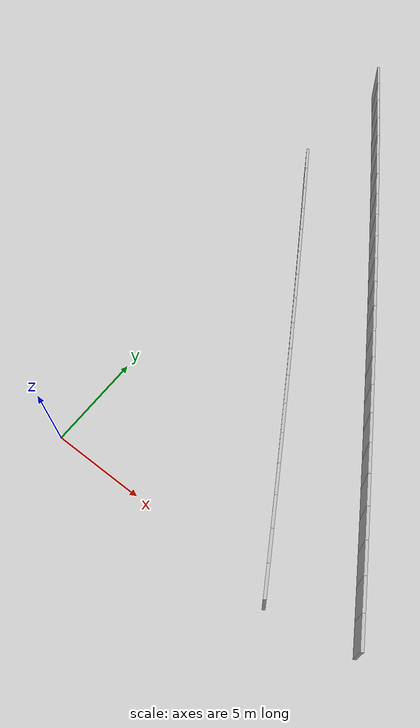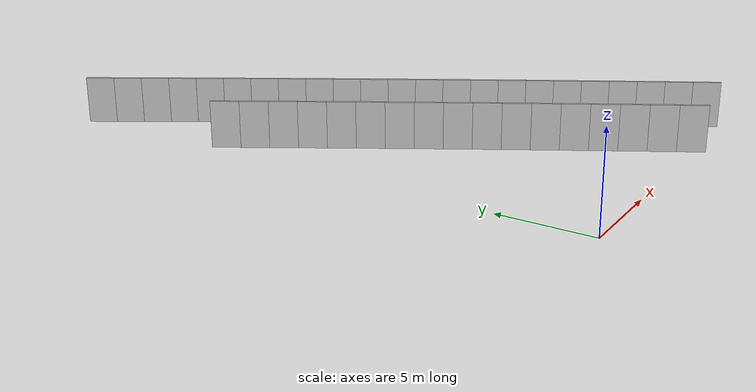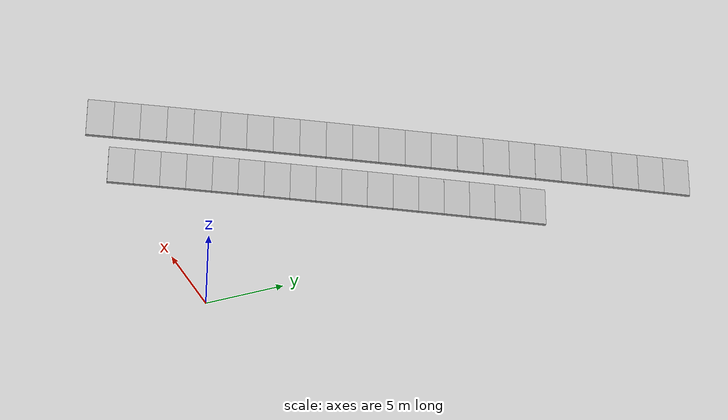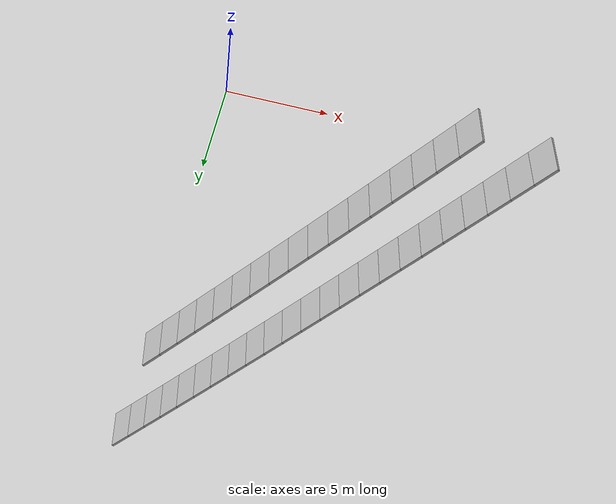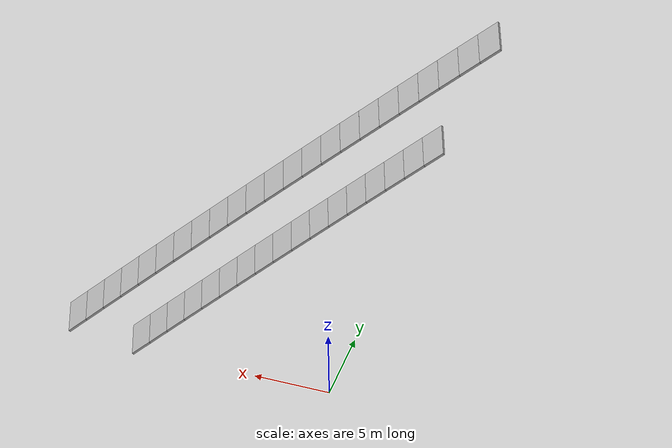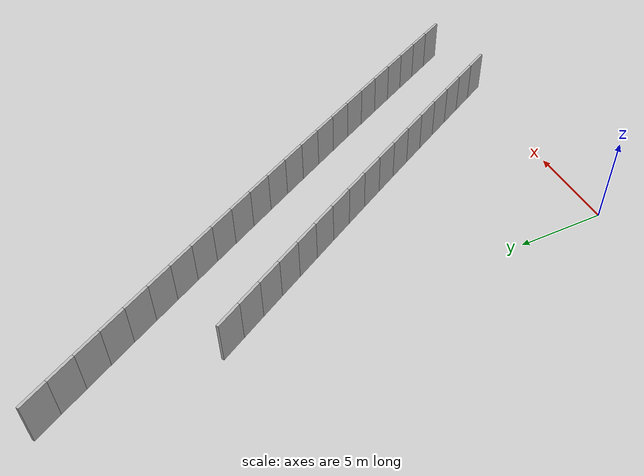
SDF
<?xml version="1.0" ?>
<sdf version="1.6">
  <model name="sps_4337">
    <pose frame="">0 0 0 0 -0 0</pose>
    <static>1</static>
    <self_collide>0</self_collide>
    <allow_auto_disable>0</allow_auto_disable>
    <link name="Wall10246">
      <kinematic>0</kinematic>
      <gravity>1</gravity>
      <self_collide>0</self_collide>
      <collision name="collision">
        <geometry>
          <box>
            <size>1.49635 0.15 2.5</size>
          </box>
        </geometry>
        <pose frame="">0 0 0 0 -0 0</pose>
      </collision>
      <visual name="visual">
        <geometry>
          <box>
            <size>1.49635 0.15 2.5</size>
          </box>
        </geometry>
        <pose frame="">0 0 0 0 -0 0</pose>
        <cast_shadows>1</cast_shadows>
        <transparency>0.0</transparency>
      </visual>
      <pose frame="">12.5391 0.148971 1.25 0 -0 2.08425</pose>
    </link>
    <link name="Wall10247">
      <kinematic>0</kinematic>
      <gravity>1</gravity>
      <self_collide>0</self_collide>
      <collision name="collision">
        <geometry>
          <box>
            <size>1.49658 0.15 2.5</size>
          </box>
        </geometry>
        <pose frame="">0 0 0 0 -0 0</pose>
      </collision>
      <visual name="visual">
        <geometry>
          <box>
            <size>1.49658 0.15 2.5</size>
          </box>
        </geometry>
        <pose frame="">0 0 0 0 -0 0</pose>
        <cast_shadows>1</cast_shadows>
        <transparency>0.0</transparency>
      </visual>
      <pose frame="">11.8031 1.45189 1.25 0 -0 2.08585</pose>
    </link>
    <link name="Wall10248">
      <kinematic>0</kinematic>
      <gravity>1</gravity>
      <self_collide>0</self_collide>
      <collision name="collision">
        <geometry>
          <box>
            <size>1.49642 0.15 2.5</size>
          </box>
        </geometry>
        <pose frame="">0 0 0 0 -0 0</pose>
      </collision>
      <visual name="visual">
        <geometry>
          <box>
            <size>1.49642 0.15 2.5</size>
          </box>
        </geometry>
        <pose frame="">0 0 0 0 -0 0</pose>
        <cast_shadows>1</cast_shadows>
        <transparency>0.0</transparency>
      </visual>
      <pose frame="">11.065 2.75371 1.25 0 -0 2.08731</pose>
    </link>
    <link name="Wall10249">
      <kinematic>0</kinematic>
      <gravity>1</gravity>
      <self_collide>0</self_collide>
      <collision name="collision">
        <geometry>
          <box>
            <size>1.49661 0.15 2.5</size>
          </box>
        </geometry>
        <pose frame="">0 0 0 0 -0 0</pose>
      </collision>
      <visual name="visual">
        <geometry>
          <box>
            <size>1.49661 0.15 2.5</size>
          </box>
        </geometry>
        <pose frame="">0 0 0 0 -0 0</pose>
        <cast_shadows>1</cast_shadows>
        <transparency>0.0</transparency>
      </visual>
      <pose frame="">10.3249 4.0544 1.25 0 -0 2.08893</pose>
    </link>
    <link name="Wall10250">
      <kinematic>0</kinematic>
      <gravity>1</gravity>
      <self_collide>0</self_collide>
      <collision name="collision">
        <geometry>
          <box>
            <size>1.49653 0.15 2.5</size>
          </box>
        </geometry>
        <pose frame="">0 0 0 0 -0 0</pose>
      </collision>
      <visual name="visual">
        <geometry>
          <box>
            <size>1.49653 0.15 2.5</size>
          </box>
        </geometry>
        <pose frame="">0 0 0 0 -0 0</pose>
        <cast_shadows>1</cast_shadows>
        <transparency>0.0</transparency>
      </visual>
      <pose frame="">9.58254 5.3539 1.25 0 -0 2.09065</pose>
    </link>
    <link name="Wall10251">
      <kinematic>0</kinematic>
      <gravity>1</gravity>
      <self_collide>0</self_collide>
      <collision name="collision">
        <geometry>
          <box>
            <size>1.49635 0.15 2.5</size>
          </box>
        </geometry>
        <pose frame="">0 0 0 0 -0 0</pose>
      </collision>
      <visual name="visual">
        <geometry>
          <box>
            <size>1.49635 0.15 2.5</size>
          </box>
        </geometry>
        <pose frame="">0 0 0 0 -0 0</pose>
        <cast_shadows>1</cast_shadows>
        <transparency>0.0</transparency>
      </visual>
      <pose frame="">8.83825 6.65211 1.25 0 -0 2.09208</pose>
    </link>
    <link name="Wall10252">
      <kinematic>0</kinematic>
      <gravity>1</gravity>
      <self_collide>0</self_collide>
      <collision name="collision">
        <geometry>
          <box>
            <size>1.49667 0.15 2.5</size>
          </box>
        </geometry>
        <pose frame="">0 0 0 0 -0 0</pose>
      </collision>
      <visual name="visual">
        <geometry>
          <box>
            <size>1.49667 0.15 2.5</size>
          </box>
        </geometry>
        <pose frame="">0 0 0 0 -0 0</pose>
        <cast_shadows>1</cast_shadows>
        <transparency>0.0</transparency>
      </visual>
      <pose frame="">8.09185 7.9492 1.25 0 -0 2.09384</pose>
    </link>
    <link name="Wall10253">
      <kinematic>0</kinematic>
      <gravity>1</gravity>
      <self_collide>0</self_collide>
      <collision name="collision">
        <geometry>
          <box>
            <size>1.49639 0.15 2.5</size>
          </box>
        </geometry>
        <pose frame="">0 0 0 0 -0 0</pose>
      </collision>
      <visual name="visual">
        <geometry>
          <box>
            <size>1.49639 0.15 2.5</size>
          </box>
        </geometry>
        <pose frame="">0 0 0 0 -0 0</pose>
        <cast_shadows>1</cast_shadows>
        <transparency>0.0</transparency>
      </visual>
      <pose frame="">7.34334 9.2451 1.25 0 -0 2.09532</pose>
    </link>
    <link name="Wall10254">
      <kinematic>0</kinematic>
      <gravity>1</gravity>
      <self_collide>0</self_collide>
      <collision name="collision">
        <geometry>
          <box>
            <size>1.49651 0.15 2.5</size>
          </box>
        </geometry>
        <pose frame="">0 0 0 0 -0 0</pose>
      </collision>
      <visual name="visual">
        <geometry>
          <box>
            <size>1.49651 0.15 2.5</size>
          </box>
        </geometry>
        <pose frame="">0 0 0 0 -0 0</pose>
        <cast_shadows>1</cast_shadows>
        <transparency>0.0</transparency>
      </visual>
      <pose frame="">6.59295 10.5398 1.25 0 -0 2.09683</pose>
    </link>
    <link name="Wall10255">
      <kinematic>0</kinematic>
      <gravity>1</gravity>
      <self_collide>0</self_collide>
      <collision name="collision">
        <geometry>
          <box>
            <size>1.49656 0.15 2.5</size>
          </box>
        </geometry>
        <pose frame="">0 0 0 0 -0 0</pose>
      </collision>
      <visual name="visual">
        <geometry>
          <box>
            <size>1.49656 0.15 2.5</size>
          </box>
        </geometry>
        <pose frame="">0 0 0 0 -0 0</pose>
        <cast_shadows>1</cast_shadows>
        <transparency>0.0</transparency>
      </visual>
      <pose frame="">5.84045 11.8334 1.25 0 -0 2.09851</pose>
    </link>
    <link name="Wall10256">
      <kinematic>0</kinematic>
      <gravity>1</gravity>
      <self_collide>0</self_collide>
      <collision name="collision">
        <geometry>
          <box>
            <size>1.49657 0.15 2.5</size>
          </box>
        </geometry>
        <pose frame="">0 0 0 0 -0 0</pose>
      </collision>
      <visual name="visual">
        <geometry>
          <box>
            <size>1.49657 0.15 2.5</size>
          </box>
        </geometry>
        <pose frame="">0 0 0 0 -0 0</pose>
        <cast_shadows>1</cast_shadows>
        <transparency>0.0</transparency>
      </visual>
      <pose frame="">5.08584 13.1258 1.25 0 -0 2.10006</pose>
    </link>
    <link name="Wall10257">
      <kinematic>0</kinematic>
      <gravity>1</gravity>
      <self_collide>0</self_collide>
      <collision name="collision">
        <geometry>
          <box>
            <size>1.49651 0.15 2.5</size>
          </box>
        </geometry>
        <pose frame="">0 0 0 0 -0 0</pose>
      </collision>
      <visual name="visual">
        <geometry>
          <box>
            <size>1.49651 0.15 2.5</size>
          </box>
        </geometry>
        <pose frame="">0 0 0 0 -0 0</pose>
        <cast_shadows>1</cast_shadows>
        <transparency>0.0</transparency>
      </visual>
      <pose frame="">4.32925 14.417 1.25 0 -0 2.1016</pose>
    </link>
    <link name="Wall10258">
      <kinematic>0</kinematic>
      <gravity>1</gravity>
      <self_collide>0</self_collide>
      <collision name="collision">
        <geometry>
          <box>
            <size>1.49649 0.15 2.5</size>
          </box>
        </geometry>
        <pose frame="">0 0 0 0 -0 0</pose>
      </collision>
      <visual name="visual">
        <geometry>
          <box>
            <size>1.49649 0.15 2.5</size>
          </box>
        </geometry>
        <pose frame="">0 0 0 0 -0 0</pose>
        <cast_shadows>1</cast_shadows>
        <transparency>0.0</transparency>
      </visual>
      <pose frame="">3.57055 15.7069 1.25 0 -0 2.10335</pose>
    </link>
    <link name="Wall10259">
      <kinematic>0</kinematic>
      <gravity>1</gravity>
      <self_collide>0</self_collide>
      <collision name="collision">
        <geometry>
          <box>
            <size>1.49629 0.15 2.5</size>
          </box>
        </geometry>
        <pose frame="">0 0 0 0 -0 0</pose>
      </collision>
      <visual name="visual">
        <geometry>
          <box>
            <size>1.49629 0.15 2.5</size>
          </box>
        </geometry>
        <pose frame="">0 0 0 0 -0 0</pose>
        <cast_shadows>1</cast_shadows>
        <transparency>0.0</transparency>
      </visual>
      <pose frame="">2.80984 16.9955 1.25 0 -0 2.10481</pose>
    </link>
    <link name="Wall10260">
      <kinematic>0</kinematic>
      <gravity>1</gravity>
      <self_collide>0</self_collide>
      <collision name="collision">
        <geometry>
          <box>
            <size>1.49657 0.15 2.5</size>
          </box>
        </geometry>
        <pose frame="">0 0 0 0 -0 0</pose>
      </collision>
      <visual name="visual">
        <geometry>
          <box>
            <size>1.49657 0.15 2.5</size>
          </box>
        </geometry>
        <pose frame="">0 0 0 0 -0 0</pose>
        <cast_shadows>1</cast_shadows>
        <transparency>0.0</transparency>
      </visual>
      <pose frame="">2.04714 18.283 1.25 0 -0 2.1064</pose>
    </link>
    <link name="Wall10261">
      <kinematic>0</kinematic>
      <gravity>1</gravity>
      <self_collide>0</self_collide>
      <collision name="collision">
        <geometry>
          <box>
            <size>1.49669 0.15 2.5</size>
          </box>
        </geometry>
        <pose frame="">0 0 0 0 -0 0</pose>
      </collision>
      <visual name="visual">
        <geometry>
          <box>
            <size>1.49669 0.15 2.5</size>
          </box>
        </geometry>
        <pose frame="">0 0 0 0 -0 0</pose>
        <cast_shadows>1</cast_shadows>
        <transparency>0.0</transparency>
      </visual>
      <pose frame="">1.28225 19.5694 1.25 0 -0 2.10806</pose>
    </link>
    <link name="Wall10262">
      <kinematic>0</kinematic>
      <gravity>1</gravity>
      <self_collide>0</self_collide>
      <collision name="collision">
        <geometry>
          <box>
            <size>1.49643 0.15 2.5</size>
          </box>
        </geometry>
        <pose frame="">0 0 0 0 -0 0</pose>
      </collision>
      <visual name="visual">
        <geometry>
          <box>
            <size>1.49643 0.15 2.5</size>
          </box>
        </geometry>
        <pose frame="">0 0 0 0 -0 0</pose>
        <cast_shadows>1</cast_shadows>
        <transparency>0.0</transparency>
      </visual>
      <pose frame="">0.515342 20.8545 1.25 0 -0 2.10959</pose>
    </link>
    <link name="Wall10842">
      <kinematic>0</kinematic>
      <gravity>1</gravity>
      <self_collide>0</self_collide>
      <collision name="collision">
        <geometry>
          <box>
            <size>1.50323 0.15 2.5</size>
          </box>
        </geometry>
        <pose frame="">0 0 0 0 -0 0</pose>
      </collision>
      <visual name="visual">
        <geometry>
          <box>
            <size>1.50323 0.15 2.5</size>
          </box>
        </geometry>
        <pose frame="">0 0 0 0 -0 0</pose>
        <cast_shadows>1</cast_shadows>
        <transparency>0.0</transparency>
      </visual>
      <pose frame="">16.8825 0.87297 1.25 0 -0 2.0826</pose>
    </link>
    <link name="Wall10843">
      <kinematic>0</kinematic>
      <gravity>1</gravity>
      <self_collide>0</self_collide>
      <collision name="collision">
        <geometry>
          <box>
            <size>1.50296 0.15 2.5</size>
          </box>
        </geometry>
        <pose frame="">0 0 0 0 -0 0</pose>
      </collision>
      <visual name="visual">
        <geometry>
          <box>
            <size>1.50296 0.15 2.5</size>
          </box>
        </geometry>
        <pose frame="">0 0 0 0 -0 0</pose>
        <cast_shadows>1</cast_shadows>
        <transparency>0.0</transparency>
      </visual>
      <pose frame="">16.1453 2.18288 1.25 0 -0 2.08419</pose>
    </link>
    <link name="Wall10844">
      <kinematic>0</kinematic>
      <gravity>1</gravity>
      <self_collide>0</self_collide>
      <collision name="collision">
        <geometry>
          <box>
            <size>1.50297 0.15 2.5</size>
          </box>
        </geometry>
        <pose frame="">0 0 0 0 -0 0</pose>
      </collision>
      <visual name="visual">
        <geometry>
          <box>
            <size>1.50297 0.15 2.5</size>
          </box>
        </geometry>
        <pose frame="">0 0 0 0 -0 0</pose>
        <cast_shadows>1</cast_shadows>
        <transparency>0.0</transparency>
      </visual>
      <pose frame="">15.4062 3.4915 1.25 0 -0 2.08577</pose>
    </link>
    <link name="Wall10845">
      <kinematic>0</kinematic>
      <gravity>1</gravity>
      <self_collide>0</self_collide>
      <collision name="collision">
        <geometry>
          <box>
            <size>1.50316 0.15 2.5</size>
          </box>
        </geometry>
        <pose frame="">0 0 0 0 -0 0</pose>
      </collision>
      <visual name="visual">
        <geometry>
          <box>
            <size>1.50316 0.15 2.5</size>
          </box>
        </geometry>
        <pose frame="">0 0 0 0 -0 0</pose>
        <cast_shadows>1</cast_shadows>
        <transparency>0.0</transparency>
      </visual>
      <pose frame="">14.6648 4.79899 1.25 0 -0 2.08747</pose>
    </link>
    <link name="Wall10846">
      <kinematic>0</kinematic>
      <gravity>1</gravity>
      <self_collide>0</self_collide>
      <collision name="collision">
        <geometry>
          <box>
            <size>1.50314 0.15 2.5</size>
          </box>
        </geometry>
        <pose frame="">0 0 0 0 -0 0</pose>
      </collision>
      <visual name="visual">
        <geometry>
          <box>
            <size>1.50314 0.15 2.5</size>
          </box>
        </geometry>
        <pose frame="">0 0 0 0 -0 0</pose>
        <cast_shadows>1</cast_shadows>
        <transparency>0.0</transparency>
      </visual>
      <pose frame="">13.9213 6.10539 1.25 0 -0 2.08893</pose>
    </link>
    <link name="Wall10847">
      <kinematic>0</kinematic>
      <gravity>1</gravity>
      <self_collide>0</self_collide>
      <collision name="collision">
        <geometry>
          <box>
            <size>1.50309 0.15 2.5</size>
          </box>
        </geometry>
        <pose frame="">0 0 0 0 -0 0</pose>
      </collision>
      <visual name="visual">
        <geometry>
          <box>
            <size>1.50309 0.15 2.5</size>
          </box>
        </geometry>
        <pose frame="">0 0 0 0 -0 0</pose>
        <cast_shadows>1</cast_shadows>
        <transparency>0.0</transparency>
      </visual>
      <pose frame="">13.1757 7.4106 1.25 0 -0 2.09059</pose>
    </link>
    <link name="Wall10848">
      <kinematic>0</kinematic>
      <gravity>1</gravity>
      <self_collide>0</self_collide>
      <collision name="collision">
        <geometry>
          <box>
            <size>1.50308 0.15 2.5</size>
          </box>
        </geometry>
        <pose frame="">0 0 0 0 -0 0</pose>
      </collision>
      <visual name="visual">
        <geometry>
          <box>
            <size>1.50308 0.15 2.5</size>
          </box>
        </geometry>
        <pose frame="">0 0 0 0 -0 0</pose>
        <cast_shadows>1</cast_shadows>
        <transparency>0.0</transparency>
      </visual>
      <pose frame="">12.4282 8.71458 1.25 0 -0 2.09213</pose>
    </link>
    <link name="Wall10849">
      <kinematic>0</kinematic>
      <gravity>1</gravity>
      <self_collide>0</self_collide>
      <collision name="collision">
        <geometry>
          <box>
            <size>1.50303 0.15 2.5</size>
          </box>
        </geometry>
        <pose frame="">0 0 0 0 -0 0</pose>
      </collision>
      <visual name="visual">
        <geometry>
          <box>
            <size>1.50303 0.15 2.5</size>
          </box>
        </geometry>
        <pose frame="">0 0 0 0 -0 0</pose>
        <cast_shadows>1</cast_shadows>
        <transparency>0.0</transparency>
      </visual>
      <pose frame="">11.6786 10.0174 1.25 0 -0 2.0937</pose>
    </link>
    <link name="Wall10850">
      <kinematic>0</kinematic>
      <gravity>1</gravity>
      <self_collide>0</self_collide>
      <collision name="collision">
        <geometry>
          <box>
            <size>1.50297 0.15 2.5</size>
          </box>
        </geometry>
        <pose frame="">0 0 0 0 -0 0</pose>
      </collision>
      <visual name="visual">
        <geometry>
          <box>
            <size>1.50297 0.15 2.5</size>
          </box>
        </geometry>
        <pose frame="">0 0 0 0 -0 0</pose>
        <cast_shadows>1</cast_shadows>
        <transparency>0.0</transparency>
      </visual>
      <pose frame="">10.9268 11.3189 1.25 0 -0 2.09541</pose>
    </link>
    <link name="Wall10851">
      <kinematic>0</kinematic>
      <gravity>1</gravity>
      <self_collide>0</self_collide>
      <collision name="collision">
        <geometry>
          <box>
            <size>1.50305 0.15 2.5</size>
          </box>
        </geometry>
        <pose frame="">0 0 0 0 -0 0</pose>
      </collision>
      <visual name="visual">
        <geometry>
          <box>
            <size>1.50305 0.15 2.5</size>
          </box>
        </geometry>
        <pose frame="">0 0 0 0 -0 0</pose>
        <cast_shadows>1</cast_shadows>
        <transparency>0.0</transparency>
      </visual>
      <pose frame="">10.1731 12.6192 1.25 0 -0 2.09688</pose>
    </link>
    <link name="Wall10852">
      <kinematic>0</kinematic>
      <gravity>1</gravity>
      <self_collide>0</self_collide>
      <collision name="collision">
        <geometry>
          <box>
            <size>1.50304 0.15 2.5</size>
          </box>
        </geometry>
        <pose frame="">0 0 0 0 -0 0</pose>
      </collision>
      <visual name="visual">
        <geometry>
          <box>
            <size>1.50304 0.15 2.5</size>
          </box>
        </geometry>
        <pose frame="">0 0 0 0 -0 0</pose>
        <cast_shadows>1</cast_shadows>
        <transparency>0.0</transparency>
      </visual>
      <pose frame="">9.41726 13.9184 1.25 0 -0 2.09848</pose>
    </link>
    <link name="Wall10853">
      <kinematic>0</kinematic>
      <gravity>1</gravity>
      <self_collide>0</self_collide>
      <collision name="collision">
        <geometry>
          <box>
            <size>1.50306 0.15 2.5</size>
          </box>
        </geometry>
        <pose frame="">0 0 0 0 -0 0</pose>
      </collision>
      <visual name="visual">
        <geometry>
          <box>
            <size>1.50306 0.15 2.5</size>
          </box>
        </geometry>
        <pose frame="">0 0 0 0 -0 0</pose>
        <cast_shadows>1</cast_shadows>
        <transparency>0.0</transparency>
      </visual>
      <pose frame="">8.65935 15.2164 1.25 0 -0 2.10012</pose>
    </link>
    <link name="Wall10854">
      <kinematic>0</kinematic>
      <gravity>1</gravity>
      <self_collide>0</self_collide>
      <collision name="collision">
        <geometry>
          <box>
            <size>1.50308 0.15 2.5</size>
          </box>
        </geometry>
        <pose frame="">0 0 0 0 -0 0</pose>
      </collision>
      <visual name="visual">
        <geometry>
          <box>
            <size>1.50308 0.15 2.5</size>
          </box>
        </geometry>
        <pose frame="">0 0 0 0 -0 0</pose>
        <cast_shadows>1</cast_shadows>
        <transparency>0.0</transparency>
      </visual>
      <pose frame="">7.89938 16.5132 1.25 0 -0 2.10167</pose>
    </link>
    <link name="Wall10855">
      <kinematic>0</kinematic>
      <gravity>1</gravity>
      <self_collide>0</self_collide>
      <collision name="collision">
        <geometry>
          <box>
            <size>1.5031 0.15 2.5</size>
          </box>
        </geometry>
        <pose frame="">0 0 0 0 -0 0</pose>
      </collision>
      <visual name="visual">
        <geometry>
          <box>
            <size>1.5031 0.15 2.5</size>
          </box>
        </geometry>
        <pose frame="">0 0 0 0 -0 0</pose>
        <cast_shadows>1</cast_shadows>
        <transparency>0.0</transparency>
      </visual>
      <pose frame="">7.13738 17.8088 1.25 0 -0 2.10321</pose>
    </link>
    <link name="Wall10856">
      <kinematic>0</kinematic>
      <gravity>1</gravity>
      <self_collide>0</self_collide>
      <collision name="collision">
        <geometry>
          <box>
            <size>1.50311 0.15 2.5</size>
          </box>
        </geometry>
        <pose frame="">0 0 0 0 -0 0</pose>
      </collision>
      <visual name="visual">
        <geometry>
          <box>
            <size>1.50311 0.15 2.5</size>
          </box>
        </geometry>
        <pose frame="">0 0 0 0 -0 0</pose>
        <cast_shadows>1</cast_shadows>
        <transparency>0.0</transparency>
      </visual>
      <pose frame="">6.37328 19.1032 1.25 0 -0 2.10491</pose>
    </link>
    <link name="Wall10857">
      <kinematic>0</kinematic>
      <gravity>1</gravity>
      <self_collide>0</self_collide>
      <collision name="collision">
        <geometry>
          <box>
            <size>1.50305 0.15 2.5</size>
          </box>
        </geometry>
        <pose frame="">0 0 0 0 -0 0</pose>
      </collision>
      <visual name="visual">
        <geometry>
          <box>
            <size>1.50305 0.15 2.5</size>
          </box>
        </geometry>
        <pose frame="">0 0 0 0 -0 0</pose>
        <cast_shadows>1</cast_shadows>
        <transparency>0.0</transparency>
      </visual>
      <pose frame="">5.60717 20.3964 1.25 0 -0 2.10635</pose>
    </link>
    <link name="Wall10858">
      <kinematic>0</kinematic>
      <gravity>1</gravity>
      <self_collide>0</self_collide>
      <collision name="collision">
        <geometry>
          <box>
            <size>1.50296 0.15 2.5</size>
          </box>
        </geometry>
        <pose frame="">0 0 0 0 -0 0</pose>
      </collision>
      <visual name="visual">
        <geometry>
          <box>
            <size>1.50296 0.15 2.5</size>
          </box>
        </geometry>
        <pose frame="">0 0 0 0 -0 0</pose>
        <cast_shadows>1</cast_shadows>
        <transparency>0.0</transparency>
      </visual>
      <pose frame="">4.83904 21.6883 1.25 0 -0 2.10808</pose>
    </link>
    <link name="Wall10859">
      <kinematic>0</kinematic>
      <gravity>1</gravity>
      <self_collide>0</self_collide>
      <collision name="collision">
        <geometry>
          <box>
            <size>1.50313 0.15 2.5</size>
          </box>
        </geometry>
        <pose frame="">0 0 0 0 -0 0</pose>
      </collision>
      <visual name="visual">
        <geometry>
          <box>
            <size>1.50313 0.15 2.5</size>
          </box>
        </geometry>
        <pose frame="">0 0 0 0 -0 0</pose>
        <cast_shadows>1</cast_shadows>
        <transparency>0.0</transparency>
      </visual>
      <pose frame="">4.06884 22.979 1.25 0 -0 2.10953</pose>
    </link>
    <link name="Wall10860">
      <kinematic>0</kinematic>
      <gravity>1</gravity>
      <self_collide>0</self_collide>
      <collision name="collision">
        <geometry>
          <box>
            <size>1.50321 0.15 2.5</size>
          </box>
        </geometry>
        <pose frame="">0 0 0 0 -0 0</pose>
      </collision>
      <visual name="visual">
        <geometry>
          <box>
            <size>1.50321 0.15 2.5</size>
          </box>
        </geometry>
        <pose frame="">0 0 0 0 -0 0</pose>
        <cast_shadows>1</cast_shadows>
        <transparency>0.0</transparency>
      </visual>
      <pose frame="">3.29656 24.2686 1.25 0 -0 2.1112</pose>
    </link>
    <link name="Wall10861">
      <kinematic>0</kinematic>
      <gravity>1</gravity>
      <self_collide>0</self_collide>
      <collision name="collision">
        <geometry>
          <box>
            <size>1.50311 0.15 2.5</size>
          </box>
        </geometry>
        <pose frame="">0 0 0 0 -0 0</pose>
      </collision>
      <visual name="visual">
        <geometry>
          <box>
            <size>1.50311 0.15 2.5</size>
          </box>
        </geometry>
        <pose frame="">0 0 0 0 -0 0</pose>
        <cast_shadows>1</cast_shadows>
        <transparency>0.0</transparency>
      </visual>
      <pose frame="">2.52227 25.557 1.25 0 -0 2.11266</pose>
    </link>
    <link name="Wall10862">
      <kinematic>0</kinematic>
      <gravity>1</gravity>
      <self_collide>0</self_collide>
      <collision name="collision">
        <geometry>
          <box>
            <size>1.50309 0.15 2.5</size>
          </box>
        </geometry>
        <pose frame="">0 0 0 0 -0 0</pose>
      </collision>
      <visual name="visual">
        <geometry>
          <box>
            <size>1.50309 0.15 2.5</size>
          </box>
        </geometry>
        <pose frame="">0 0 0 0 -0 0</pose>
        <cast_shadows>1</cast_shadows>
        <transparency>0.0</transparency>
      </visual>
      <pose frame="">1.74596 26.8441 1.25 0 -0 2.11438</pose>
    </link>
    <link name="Wall10863">
      <kinematic>0</kinematic>
      <gravity>1</gravity>
      <self_collide>0</self_collide>
      <collision name="collision">
        <geometry>
          <box>
            <size>1.50304 0.15 2.5</size>
          </box>
        </geometry>
        <pose frame="">0 0 0 0 -0 0</pose>
      </collision>
      <visual name="visual">
        <geometry>
          <box>
            <size>1.50304 0.15 2.5</size>
          </box>
        </geometry>
        <pose frame="">0 0 0 0 -0 0</pose>
        <cast_shadows>1</cast_shadows>
        <transparency>0.0</transparency>
      </visual>
      <pose frame="">0.967552 28.1299 1.25 0 -0 2.11597</pose>
    </link>
    <link name="Wall10864">
      <kinematic>0</kinematic>
      <gravity>1</gravity>
      <self_collide>0</self_collide>
      <collision name="collision">
        <geometry>
          <box>
            <size>1.50306 0.15 2.5</size>
          </box>
        </geometry>
        <pose frame="">0 0 0 0 -0 0</pose>
      </collision>
      <visual name="visual">
        <geometry>
          <box>
            <size>1.50306 0.15 2.5</size>
          </box>
        </geometry>
        <pose frame="">0 0 0 0 -0 0</pose>
        <cast_shadows>1</cast_shadows>
        <transparency>0.0</transparency>
      </visual>
      <pose frame="">0.187156 29.4145 1.25 0 -0 2.11748</pose>
    </link>
  </model>
</sdf>
